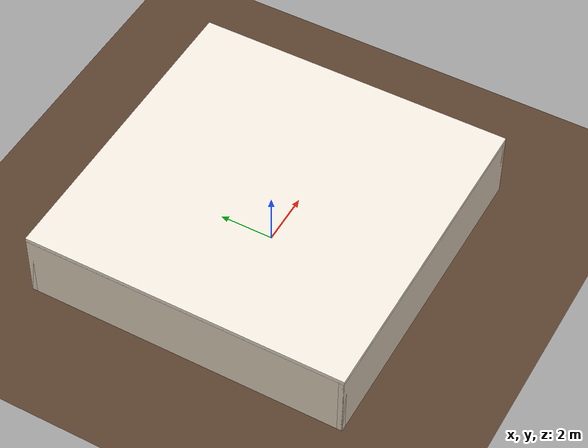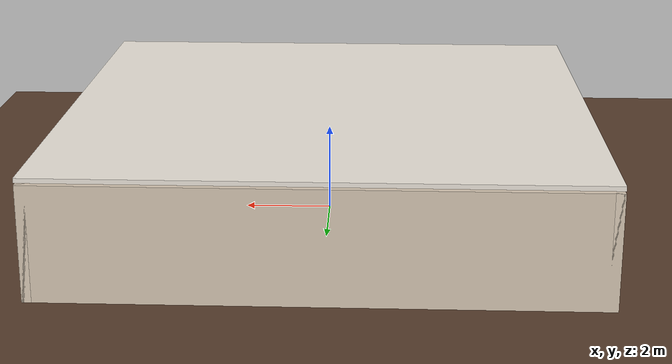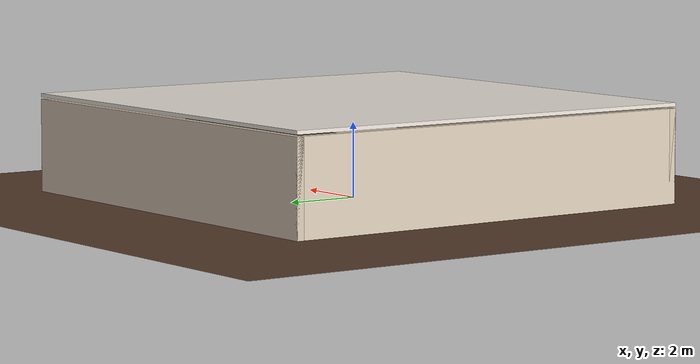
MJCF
<mujoco model="cozy_restaurant">
  <compiler angle="degree" coordinate="local"/>
  <option timestep="0.002" gravity="0 0 -9.81" integrator="RK4"/>
  <size njmax="2000" nconmax="500"/>

  <worldbody>
    <!-- Lighting -->
    <light name="warm_light_1" pos="0 0 3.2" dir="0 0 -1" diffuse="1 0.95 0.85" specular="0.2 0.2 0.2" castshadow="true"/>
    <light name="warm_light_2" pos="3 -2 3.0" dir="-0.2 0.2 -1" diffuse="1 0.92 0.82" specular="0.15 0.15 0.15" castshadow="true"/>
    <light name="warm_light_3" pos="-3 2 3.0" dir="0.2 -0.2 -1" diffuse="1 0.92 0.82" specular="0.15 0.15 0.15" castshadow="true"/>

    <!-- Floor -->
    <geom name="floor" type="plane" pos="0 0 0" size="12 12 0.2" rgba="0.35 0.25 0.18 1" contype="1" conaffinity="1" friction="1.0 0.005 0.0001"/>

    <!-- Walls (simple perimeter) -->
    <geom name="wall_north" type="box" pos="0 5.9 1.25" size="6 0.1 1.25" rgba="0.86 0.80 0.72 1" contype="1" conaffinity="1"/>
    <geom name="wall_south" type="box" pos="0 -5.9 1.25" size="6 0.1 1.25" rgba="0.86 0.80 0.72 1" contype="1" conaffinity="1"/>
    <geom name="wall_east" type="box" pos="5.9 0 1.25" size="0.1 6 1.25" rgba="0.88 0.82 0.74 1" contype="1" conaffinity="1"/>
    <geom name="wall_west" type="box" pos="-5.9 0 1.25" size="0.1 6 1.25" rgba="0.88 0.82 0.74 1" contype="1" conaffinity="1"/>

    <!-- Ceiling (non-colliding for simplicity) -->
    <geom name="ceiling" type="box" pos="0 0 2.6" size="6 6 0.05" rgba="0.95 0.92 0.88 1" contype="0" conaffinity="0"/>

    <!-- Rug / cozy area -->
    <geom name="rug" type="box" pos="-2.2 -1.2 0.01" size="2.1 1.5 0.01" rgba="0.55 0.22 0.22 1" contype="1" conaffinity="1" friction="1.3 0.005 0.0001"/>

    <!-- Bar counter (right side) -->
    <body name="bar" pos="3.8 0.0 0">
      <!-- base -->
      <geom name="bar_base" type="box" pos="0 0 0.5" size="1.4 3.0 0.5" rgba="0.18 0.12 0.08 1" contype="1" conaffinity="1"/>
      <!-- top -->
      <geom name="bar_top" type="box" pos="0 0 1.05" size="1.5 3.1 0.05" rgba="0.32 0.21 0.12 1" contype="1" conaffinity="1"/>
      <!-- kick plate -->
      <geom name="bar_kick" type="box" pos="-1.1 0 0.15" size="0.25 2.9 0.15" rgba="0.12 0.08 0.05 1" contype="1" conaffinity="1"/>
      <!-- back shelf -->
      <geom name="bar_back_shelf" type="box" pos="1.0 0 1.55" size="0.35 2.8 0.04" rgba="0.25 0.17 0.10 1" contype="1" conaffinity="1"/>
      <!-- backboard panel -->
      <geom name="bar_back_panel" type="box" pos="1.25 0 1.1" size="0.05 2.8 0.7" rgba="0.20 0.14 0.09 1" contype="1" conaffinity="1"/>
    </body>

    <!-- Bar stools -->
    <body name="stool_1" pos="2.6 -2.0 0">
      <geom name="stool_1_seat" type="cylinder" pos="0 0 0.65" size="0.22 0.06" rgba="0.10 0.10 0.10 1" contype="1" conaffinity="1"/>
      <geom name="stool_1_post" type="cylinder" pos="0 0 0.32" size="0.06 0.32" rgba="0.35 0.35 0.38 1" contype="1" conaffinity="1"/>
      <geom name="stool_1_base" type="cylinder" pos="0 0 0.03" size="0.28 0.03" rgba="0.30 0.30 0.32 1" contype="1" conaffinity="1"/>
    </body>

    <body name="stool_2" pos="2.6 0.0 0">
      <geom name="stool_2_seat" type="cylinder" pos="0 0 0.65" size="0.22 0.06" rgba="0.10 0.10 0.10 1" contype="1" conaffinity="1"/>
      <geom name="stool_2_post" type="cylinder" pos="0 0 0.32" size="0.06 0.32" rgba="0.35 0.35 0.38 1" contype="1" conaffinity="1"/>
      <geom name="stool_2_base" type="cylinder" pos="0 0 0.03" size="0.28 0.03" rgba="0.30 0.30 0.32 1" contype="1" conaffinity="1"/>
    </body>

    <body name="stool_3" pos="2.6 2.0 0">
      <geom name="stool_3_seat" type="cylinder" pos="0 0 0.65" size="0.22 0.06" rgba="0.10 0.10 0.10 1" contype="1" conaffinity="1"/>
      <geom name="stool_3_post" type="cylinder" pos="0 0 0.32" size="0.06 0.32" rgba="0.35 0.35 0.38 1" contype="1" conaffinity="1"/>
      <geom name="stool_3_base" type="cylinder" pos="0 0 0.03" size="0.28 0.03" rgba="0.30 0.30 0.32 1" contype="1" conaffinity="1"/>
    </body>

    <!-- Dining tables (a few) -->
    <body name="table_1" pos="-2.5 -2.0 0">
      <geom name="table_1_top" type="box" pos="0 0 0.75" size="0.7 0.7 0.04" rgba="0.40 0.26 0.14 1" contype="1" conaffinity="1"/>
      <geom name="table_1_leg" type="cylinder" pos="0 0 0.37" size="0.07 0.37" rgba="0.25 0.25 0.27 1" contype="1" conaffinity="1"/>
      <geom name="table_1_foot" type="cylinder" pos="0 0 0.03" size="0.35 0.03" rgba="0.20 0.20 0.22 1" contype="1" conaffinity="1"/>
    </body>

    <body name="table_2" pos="-2.0 1.3 0">
      <geom name="table_2_top" type="box" pos="0 0 0.75" size="0.65 0.65 0.04" rgba="0.42 0.27 0.15 1" contype="1" conaffinity="1"/>
      <geom name="table_2_leg" type="cylinder" pos="0 0 0.37" size="0.07 0.37" rgba="0.25 0.25 0.27 1" contype="1" conaffinity="1"/>
      <geom name="table_2_foot" type="cylinder" pos="0 0 0.03" size="0.35 0.03" rgba="0.20 0.20 0.22 1" contype="1" conaffinity="1"/>
    </body>

    <body name="table_3" pos="-0.2 -0.5 0">
      <geom name="table_3_top" type="box" pos="0 0 0.75" size="0.9 0.6 0.04" rgba="0.40 0.25 0.14 1" contype="1" conaffinity="1"/>
      <geom name="table_3_leg_1" type="cylinder" pos="-0.65 -0.35 0.37" size="0.05 0.37" rgba="0.22 0.22 0.24 1" contype="1" conaffinity="1"/>
      <geom name="table_3_leg_2" type="cylinder" pos="-0.65 0.35 0.37" size="0.05 0.37" rgba="0.22 0.22 0.24 1" contype="1" conaffinity="1"/>
      <geom name="table_3_leg_3" type="cylinder" pos="0.65 -0.35 0.37" size="0.05 0.37" rgba="0.22 0.22 0.24 1" contype="1" conaffinity="1"/>
      <geom name="table_3_leg_4" type="cylinder" pos="0.65 0.35 0.37" size="0.05 0.37" rgba="0.22 0.22 0.24 1" contype="1" conaffinity="1"/>
    </body>

    <!-- Chairs around table_1 -->
    <body name="chair_1a" pos="-3.5 -2.0 0" quat="0.7071 0 0 0.7071">
      <geom name="chair_1a_seat" type="box" pos="0 0 0.45" size="0.22 0.22 0.03" rgba="0.16 0.10 0.07 1" contype="1" conaffinity="1"/>
      <geom name="chair_1a_back" type="box" pos="0 -0.18 0.68" size="0.22 0.03 0.20" rgba="0.16 0.10 0.07 1" contype="1" conaffinity="1"/>
      <geom name="chair_1a_leg1" type="cylinder" pos="0.18 0.18 0.22" size="0.03 0.22" rgba="0.22 0.22 0.24 1" contype="1" conaffinity="1"/>
      <geom name="chair_1a_leg2" type="cylinder" pos="-0.18 0.18 0.22" size="0.03 0.22" rgba="0.22 0.22 0.24 1" contype="1" conaffinity="1"/>
      <geom name="chair_1a_leg3" type="cylinder" pos="0.18 -0.18 0.22" size="0.03 0.22" rgba="0.22 0.22 0.24 1" contype="1" conaffinity="1"/>
      <geom name="chair_1a_leg4" type="cylinder" pos="-0.18 -0.18 0.22" size="0.03 0.22" rgba="0.22 0.22 0.24 1" contype="1" conaffinity="1"/>
    </body>

    <body name="chair_1b" pos="-2.5 -3.0 0" quat="1 0 0 0">
      <geom name="chair_1b_seat" type="box" pos="0 0 0.45" size="0.22 0.22 0.03" rgba="0.16 0.10 0.07 1" contype="1" conaffinity="1"/>
      <geom name="chair_1b_back" type="box" pos="0 -0.18 0.68" size="0.22 0.03 0.20" rgba="0.16 0.10 0.07 1" contype="1" conaffinity="1"/>
      <geom name="chair_1b_leg1" type="cylinder" pos="0.18 0.18 0.22" size="0.03 0.22" rgba="0.22 0.22 0.24 1" contype="1" conaffinity="1"/>
      <geom name="chair_1b_leg2" type="cylinder" pos="-0.18 0.18 0.22" size="0.03 0.22" rgba="0.22 0.22 0.24 1" contype="1" conaffinity="1"/>
      <geom name="chair_1b_leg3" type="cylinder" pos="0.18 -0.18 0.22" size="0.03 0.22" rgba="0.22 0.22 0.24 1" contype="1" conaffinity="1"/>
      <geom name="chair_1b_leg4" type="cylinder" pos="-0.18 -0.18 0.22" size="0.03 0.22" rgba="0.22 0.22 0.24 1" contype="1" conaffinity="1"/>
    </body>

    <!-- Cozy plants (decor) -->
    <body name="plant_1" pos="-5.1 4.9 0">
      <geom name="plant_1_pot" type="cylinder" pos="0 0 0.12" size="0.18 0.12" rgba="0.35 0.20 0.12 1" contype="1" conaffinity="1"/>
      <geom name="plant_1_stem" type="cylinder" pos="0 0 0.42" size="0.03 0.30" rgba="0.20 0.35 0.20 1" contype="1" conaffinity="1"/>
      <geom name="plant_1_canopy" type="sphere" pos="0 0 0.75" size="0.22" rgba="0.15 0.45 0.20 1" contype="0" conaffinity="0"/>
    </body>

    <body name="plant_2" pos="5.1 -4.9 0">
      <geom name="plant_2_pot" type="cylinder" pos="0 0 0.12" size="0.18 0.12" rgba="0.35 0.20 0.12 1" contype="1" conaffinity="1"/>
      <geom name="plant_2_stem" type="cylinder" pos="0 0 0.40" size="0.03 0.28" rgba="0.20 0.35 0.20 1" contype="1" conaffinity="1"/>
      <geom name="plant_2_canopy" type="sphere" pos="0 0 0.70" size="0.20" rgba="0.15 0.45 0.20 1" contype="0" conaffinity="0"/>
    </body>

    <!-- A few movable objects (with freejoint) -->
    <body name="wine_bottle" pos="-2.5 -2.0 0.83">
      <freejoint name="wine_bottle_free"/>
      <geom name="wine_bottle_body" type="cylinder" pos="0 0 0.12" size="0.035 0.12" rgba="0.10 0.35 0.15 1" contype="1" conaffinity="1" friction="0.6 0.005 0.0001"/>
      <geom name="wine_bottle_neck" type="cylinder" pos="0 0 0.27" size="0.018 0.06" rgba="0.10 0.35 0.15 1" contype="1" conaffinity="1" friction="0.6 0.005 0.0001"/>
      <geom name="wine_bottle_cork" type="cylinder" pos="0 0 0.34" size="0.016 0.015" rgba="0.60 0.45 0.25 1" contype="1" conaffinity="1" friction="0.6 0.005 0.0001"/>
    </body>

    <body name="water_glass" pos="-2.55 -1.9 0.83">
      <freejoint name="water_glass_free"/>
      <geom name="water_glass_geom" type="cylinder" pos="0 0 0.07" size="0.035 0.07" rgba="0.75 0.85 0.95 0.35" contype="1" conaffinity="1" friction="0.5 0.005 0.0001"/>
    </body>

    <body name="plate" pos="-2.35 -2.05 0.81">
      <freejoint name="plate_free"/>
      <geom name="plate_geom" type="cylinder" pos="0 0 0.015" size="0.12 0.015" rgba="0.92 0.92 0.90 1" contype="1" conaffinity="1" friction="0.7 0.005 0.0001"/>
    </body>

    <!-- A small menu board near the entrance (static) -->
    <body name="menu_board" pos="-5.4 -1.5 0">
      <geom name="menu_board_post" type="box" pos="0 0 0.55" size="0.04 0.04 0.55" rgba="0.20 0.14 0.10 1" contype="1" conaffinity="1"/>
      <geom name="menu_board_panel" type="box" pos="0.0 0.08 1.15" size="0.35 0.02 0.35" rgba="0.08 0.08 0.09 1" contype="1" conaffinity="1"/>
      <geom name="menu_board_frame" type="box" pos="0.0 0.08 1.15" size="0.37 0.03 0.37" rgba="0.25 0.16 0.10 1" contype="0" conaffinity="0"/>
    </body>
  </worldbody>
</mujoco>
